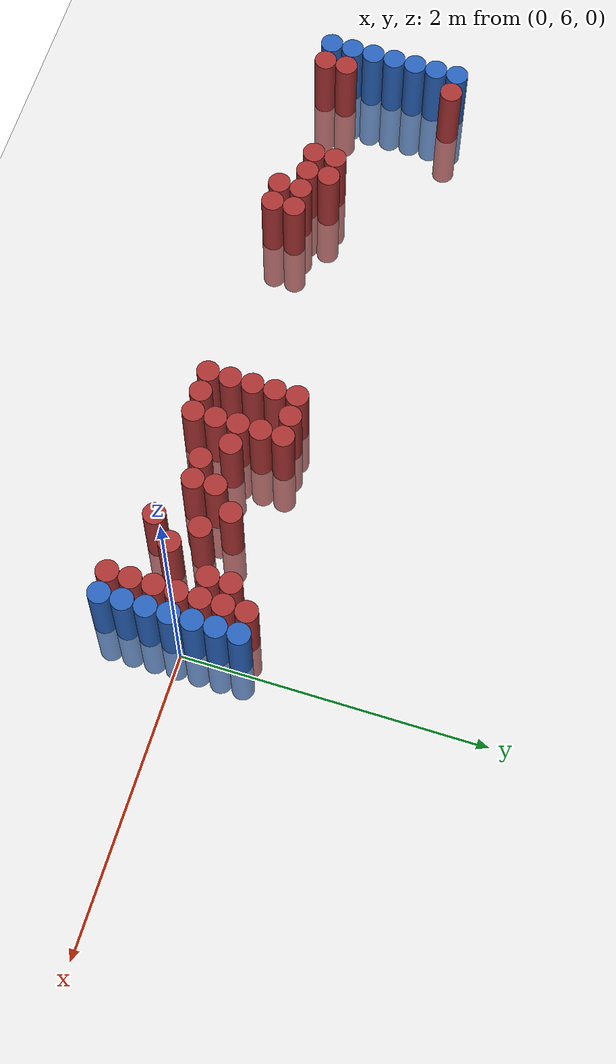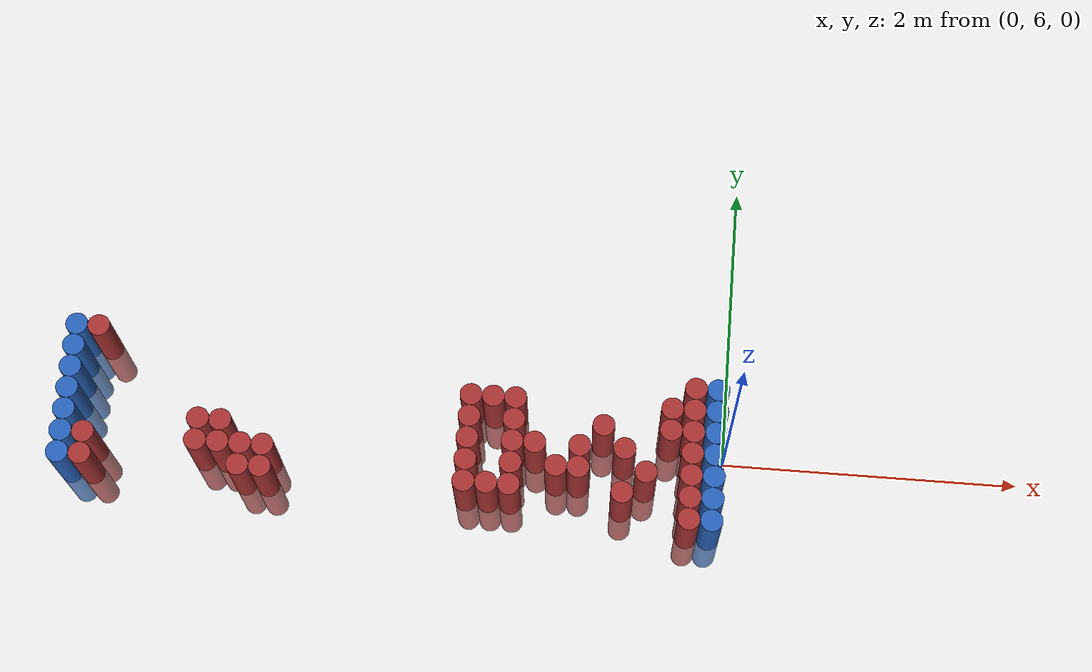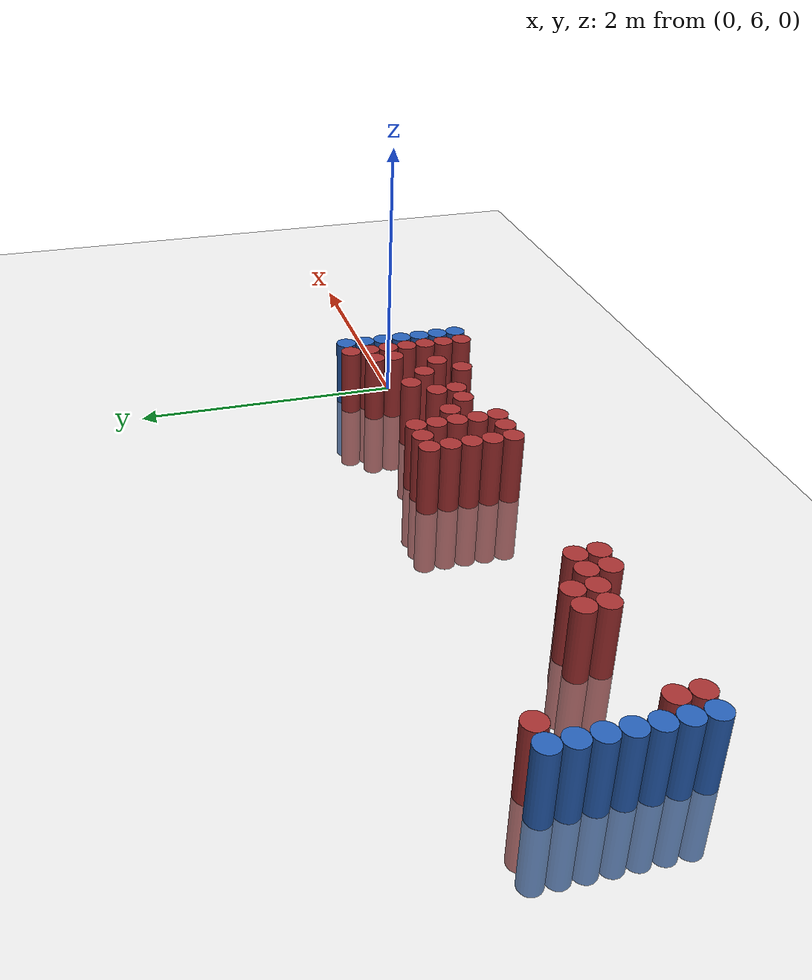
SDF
<sdf version="1.6">
 <world name="default">
  <model name="ground_plane">
   <static>1</static>
   <link name="link">
    <collision name="collision">
     <geometry><plane><normal>0 0 1</normal><size>100 100</size></plane></geometry>
     <surface><friction><ode><mu>100</mu><mu2>50</mu2></ode></friction></surface>
    </collision>
    <visual name="visual">
     <cast_shadows>0</cast_shadows>
     <geometry><plane><normal>0 0 1</normal><size>100 100</size></plane></geometry>
     <material>
      <script><uri>file://media/materials/scripts/gazebo.material</uri><name>Gazebo/Grey</name></script>
     </material>
    </visual>
   </link>
  </model>
  <model name="unit_cylinder_99">
   <static>1</static>
   <pose>-4.425000 5.625000 0.000000 0.000000 0.000000 0.000000</pose>
   <link name="link">
    <inertial>
     <mass>1</mass>
     <inertia><ixx>0.145833</ixx><ixy>0</ixy><ixz>0</ixz><iyy>0.145833</iyy><iyz>0</iyz><izz>0.125</izz></inertia>
    </inertial>
    <collision name="collision">
     <geometry><cylinder><radius>0.075000</radius><length>1</length></cylinder></geometry>
    </collision>
    <visual name="visual">
     <geometry><cylinder><radius>0.075000</radius><length>1</length></cylinder></geometry>
     <material>
      <ambient>0.152000 0.379000 0.720000 1</ambient>
      <diffuse>0.152000 0.379000 0.720000 1</diffuse>
     </material>
     <material>
      <script><name>Gazebo/Grey</name><uri>file://media/materials/scripts/gazebo.material</uri></script>
     </material>
    </visual>
   </link>
  </model>
  <model name="unit_cylinder_100">
   <static>1</static>
   <pose>-4.425000 5.775000 0.000000 0.000000 0.000000 0.000000</pose>
   <link name="link">
    <inertial>
     <mass>1</mass>
     <inertia><ixx>0.145833</ixx><ixy>0</ixy><ixz>0</ixz><iyy>0.145833</iyy><iyz>0</iyz><izz>0.125</izz></inertia>
    </inertial>
    <collision name="collision">
     <geometry><cylinder><radius>0.075000</radius><length>1</length></cylinder></geometry>
    </collision>
    <visual name="visual">
     <geometry><cylinder><radius>0.075000</radius><length>1</length></cylinder></geometry>
     <material>
      <ambient>0.152000 0.379000 0.720000 1</ambient>
      <diffuse>0.152000 0.379000 0.720000 1</diffuse>
     </material>
     <material>
      <script><name>Gazebo/Grey</name><uri>file://media/materials/scripts/gazebo.material</uri></script>
     </material>
    </visual>
   </link>
  </model>
  <model name="unit_cylinder_101">
   <static>1</static>
   <pose>-4.425000 5.925000 0.000000 0.000000 0.000000 0.000000</pose>
   <link name="link">
    <inertial>
     <mass>1</mass>
     <inertia><ixx>0.145833</ixx><ixy>0</ixy><ixz>0</ixz><iyy>0.145833</iyy><iyz>0</iyz><izz>0.125</izz></inertia>
    </inertial>
    <collision name="collision">
     <geometry><cylinder><radius>0.075000</radius><length>1</length></cylinder></geometry>
    </collision>
    <visual name="visual">
     <geometry><cylinder><radius>0.075000</radius><length>1</length></cylinder></geometry>
     <material>
      <ambient>0.152000 0.379000 0.720000 1</ambient>
      <diffuse>0.152000 0.379000 0.720000 1</diffuse>
     </material>
     <material>
      <script><name>Gazebo/Grey</name><uri>file://media/materials/scripts/gazebo.material</uri></script>
     </material>
    </visual>
   </link>
  </model>
  <model name="unit_cylinder_102">
   <static>1</static>
   <pose>-4.425000 6.075000 0.000000 0.000000 0.000000 0.000000</pose>
   <link name="link">
    <inertial>
     <mass>1</mass>
     <inertia><ixx>0.145833</ixx><ixy>0</ixy><ixz>0</ixz><iyy>0.145833</iyy><iyz>0</iyz><izz>0.125</izz></inertia>
    </inertial>
    <collision name="collision">
     <geometry><cylinder><radius>0.075000</radius><length>1</length></cylinder></geometry>
    </collision>
    <visual name="visual">
     <geometry><cylinder><radius>0.075000</radius><length>1</length></cylinder></geometry>
     <material>
      <ambient>0.152000 0.379000 0.720000 1</ambient>
      <diffuse>0.152000 0.379000 0.720000 1</diffuse>
     </material>
     <material>
      <script><name>Gazebo/Grey</name><uri>file://media/materials/scripts/gazebo.material</uri></script>
     </material>
    </visual>
   </link>
  </model>
  <model name="unit_cylinder_103">
   <static>1</static>
   <pose>-4.425000 6.225000 0.000000 0.000000 0.000000 0.000000</pose>
   <link name="link">
    <inertial>
     <mass>1</mass>
     <inertia><ixx>0.145833</ixx><ixy>0</ixy><ixz>0</ixz><iyy>0.145833</iyy><iyz>0</iyz><izz>0.125</izz></inertia>
    </inertial>
    <collision name="collision">
     <geometry><cylinder><radius>0.075000</radius><length>1</length></cylinder></geometry>
    </collision>
    <visual name="visual">
     <geometry><cylinder><radius>0.075000</radius><length>1</length></cylinder></geometry>
     <material>
      <ambient>0.152000 0.379000 0.720000 1</ambient>
      <diffuse>0.152000 0.379000 0.720000 1</diffuse>
     </material>
     <material>
      <script><name>Gazebo/Grey</name><uri>file://media/materials/scripts/gazebo.material</uri></script>
     </material>
    </visual>
   </link>
  </model>
  <model name="unit_cylinder_104">
   <static>1</static>
   <pose>-4.425000 6.375000 0.000000 0.000000 0.000000 0.000000</pose>
   <link name="link">
    <inertial>
     <mass>1</mass>
     <inertia><ixx>0.145833</ixx><ixy>0</ixy><ixz>0</ixz><iyy>0.145833</iyy><iyz>0</iyz><izz>0.125</izz></inertia>
    </inertial>
    <collision name="collision">
     <geometry><cylinder><radius>0.075000</radius><length>1</length></cylinder></geometry>
    </collision>
    <visual name="visual">
     <geometry><cylinder><radius>0.075000</radius><length>1</length></cylinder></geometry>
     <material>
      <ambient>0.152000 0.379000 0.720000 1</ambient>
      <diffuse>0.152000 0.379000 0.720000 1</diffuse>
     </material>
     <material>
      <script><name>Gazebo/Grey</name><uri>file://media/materials/scripts/gazebo.material</uri></script>
     </material>
    </visual>
   </link>
  </model>
  <model name="unit_cylinder_105">
   <static>1</static>
   <pose>-4.425000 6.525000 0.000000 0.000000 0.000000 0.000000</pose>
   <link name="link">
    <inertial>
     <mass>1</mass>
     <inertia><ixx>0.145833</ixx><ixy>0</ixy><ixz>0</ixz><iyy>0.145833</iyy><iyz>0</iyz><izz>0.125</izz></inertia>
    </inertial>
    <collision name="collision">
     <geometry><cylinder><radius>0.075000</radius><length>1</length></cylinder></geometry>
    </collision>
    <visual name="visual">
     <geometry><cylinder><radius>0.075000</radius><length>1</length></cylinder></geometry>
     <material>
      <ambient>0.152000 0.379000 0.720000 1</ambient>
      <diffuse>0.152000 0.379000 0.720000 1</diffuse>
     </material>
     <material>
      <script><name>Gazebo/Grey</name><uri>file://media/materials/scripts/gazebo.material</uri></script>
     </material>
    </visual>
   </link>
  </model>
  <model name="unit_cylinder_126">
   <static>1</static>
   <pose>-4.275000 5.625000 0.000000 0.000000 0.000000 0.000000</pose>
   <link name="link">
    <inertial>
     <mass>1</mass>
     <inertia><ixx>0.145833</ixx><ixy>0</ixy><ixz>0</ixz><iyy>0.145833</iyy><iyz>0</iyz><izz>0.125</izz></inertia>
    </inertial>
    <collision name="collision">
     <geometry><cylinder><radius>0.075000</radius><length>1</length></cylinder></geometry>
    </collision>
    <visual name="visual">
     <geometry><cylinder><radius>0.075000</radius><length>1</length></cylinder></geometry>
     <material>
      <ambient>0.648000 0.192000 0.192000 1</ambient>
      <diffuse>0.648000 0.192000 0.192000 1</diffuse>
     </material>
     <material>
      <script><name>Gazebo/Grey</name><uri>file://media/materials/scripts/gazebo.material</uri></script>
     </material>
    </visual>
   </link>
  </model>
  <model name="unit_cylinder_127">
   <static>1</static>
   <pose>-4.275000 5.775000 0.000000 0.000000 0.000000 0.000000</pose>
   <link name="link">
    <inertial>
     <mass>1</mass>
     <inertia><ixx>0.145833</ixx><ixy>0</ixy><ixz>0</ixz><iyy>0.145833</iyy><iyz>0</iyz><izz>0.125</izz></inertia>
    </inertial>
    <collision name="collision">
     <geometry><cylinder><radius>0.075000</radius><length>1</length></cylinder></geometry>
    </collision>
    <visual name="visual">
     <geometry><cylinder><radius>0.075000</radius><length>1</length></cylinder></geometry>
     <material>
      <ambient>0.648000 0.192000 0.192000 1</ambient>
      <diffuse>0.648000 0.192000 0.192000 1</diffuse>
     </material>
     <material>
      <script><name>Gazebo/Grey</name><uri>file://media/materials/scripts/gazebo.material</uri></script>
     </material>
    </visual>
   </link>
  </model>
  <model name="unit_cylinder_128">
   <static>1</static>
   <pose>-4.275000 6.525000 0.000000 0.000000 0.000000 0.000000</pose>
   <link name="link">
    <inertial>
     <mass>1</mass>
     <inertia><ixx>0.145833</ixx><ixy>0</ixy><ixz>0</ixz><iyy>0.145833</iyy><iyz>0</iyz><izz>0.125</izz></inertia>
    </inertial>
    <collision name="collision">
     <geometry><cylinder><radius>0.075000</radius><length>1</length></cylinder></geometry>
    </collision>
    <visual name="visual">
     <geometry><cylinder><radius>0.075000</radius><length>1</length></cylinder></geometry>
     <material>
      <ambient>0.648000 0.192000 0.192000 1</ambient>
      <diffuse>0.648000 0.192000 0.192000 1</diffuse>
     </material>
     <material>
      <script><name>Gazebo/Grey</name><uri>file://media/materials/scripts/gazebo.material</uri></script>
     </material>
    </visual>
   </link>
  </model>
  <model name="unit_cylinder_157">
   <static>1</static>
   <pose>-3.525000 5.775000 0.000000 0.000000 0.000000 0.000000</pose>
   <link name="link">
    <inertial>
     <mass>1</mass>
     <inertia><ixx>0.145833</ixx><ixy>0</ixy><ixz>0</ixz><iyy>0.145833</iyy><iyz>0</iyz><izz>0.125</izz></inertia>
    </inertial>
    <collision name="collision">
     <geometry><cylinder><radius>0.075000</radius><length>1</length></cylinder></geometry>
    </collision>
    <visual name="visual">
     <geometry><cylinder><radius>0.075000</radius><length>1</length></cylinder></geometry>
     <material>
      <ambient>0.648000 0.192000 0.192000 1</ambient>
      <diffuse>0.648000 0.192000 0.192000 1</diffuse>
     </material>
     <material>
      <script><name>Gazebo/Grey</name><uri>file://media/materials/scripts/gazebo.material</uri></script>
     </material>
    </visual>
   </link>
  </model>
  <model name="unit_cylinder_158">
   <static>1</static>
   <pose>-3.525000 5.925000 0.000000 0.000000 0.000000 0.000000</pose>
   <link name="link">
    <inertial>
     <mass>1</mass>
     <inertia><ixx>0.145833</ixx><ixy>0</ixy><ixz>0</ixz><iyy>0.145833</iyy><iyz>0</iyz><izz>0.125</izz></inertia>
    </inertial>
    <collision name="collision">
     <geometry><cylinder><radius>0.075000</radius><length>1</length></cylinder></geometry>
    </collision>
    <visual name="visual">
     <geometry><cylinder><radius>0.075000</radius><length>1</length></cylinder></geometry>
     <material>
      <ambient>0.648000 0.192000 0.192000 1</ambient>
      <diffuse>0.648000 0.192000 0.192000 1</diffuse>
     </material>
     <material>
      <script><name>Gazebo/Grey</name><uri>file://media/materials/scripts/gazebo.material</uri></script>
     </material>
    </visual>
   </link>
  </model>
  <model name="unit_cylinder_161">
   <static>1</static>
   <pose>-3.375000 5.775000 0.000000 0.000000 0.000000 0.000000</pose>
   <link name="link">
    <inertial>
     <mass>1</mass>
     <inertia><ixx>0.145833</ixx><ixy>0</ixy><ixz>0</ixz><iyy>0.145833</iyy><iyz>0</iyz><izz>0.125</izz></inertia>
    </inertial>
    <collision name="collision">
     <geometry><cylinder><radius>0.075000</radius><length>1</length></cylinder></geometry>
    </collision>
    <visual name="visual">
     <geometry><cylinder><radius>0.075000</radius><length>1</length></cylinder></geometry>
     <material>
      <ambient>0.648000 0.192000 0.192000 1</ambient>
      <diffuse>0.648000 0.192000 0.192000 1</diffuse>
     </material>
     <material>
      <script><name>Gazebo/Grey</name><uri>file://media/materials/scripts/gazebo.material</uri></script>
     </material>
    </visual>
   </link>
  </model>
  <model name="unit_cylinder_162">
   <static>1</static>
   <pose>-3.375000 5.925000 0.000000 0.000000 0.000000 0.000000</pose>
   <link name="link">
    <inertial>
     <mass>1</mass>
     <inertia><ixx>0.145833</ixx><ixy>0</ixy><ixz>0</ixz><iyy>0.145833</iyy><iyz>0</iyz><izz>0.125</izz></inertia>
    </inertial>
    <collision name="collision">
     <geometry><cylinder><radius>0.075000</radius><length>1</length></cylinder></geometry>
    </collision>
    <visual name="visual">
     <geometry><cylinder><radius>0.075000</radius><length>1</length></cylinder></geometry>
     <material>
      <ambient>0.648000 0.192000 0.192000 1</ambient>
      <diffuse>0.648000 0.192000 0.192000 1</diffuse>
     </material>
     <material>
      <script><name>Gazebo/Grey</name><uri>file://media/materials/scripts/gazebo.material</uri></script>
     </material>
    </visual>
   </link>
  </model>
  <model name="unit_cylinder_163">
   <static>1</static>
   <pose>-3.225000 5.625000 0.000000 0.000000 0.000000 0.000000</pose>
   <link name="link">
    <inertial>
     <mass>1</mass>
     <inertia><ixx>0.145833</ixx><ixy>0</ixy><ixz>0</ixz><iyy>0.145833</iyy><iyz>0</iyz><izz>0.125</izz></inertia>
    </inertial>
    <collision name="collision">
     <geometry><cylinder><radius>0.075000</radius><length>1</length></cylinder></geometry>
    </collision>
    <visual name="visual">
     <geometry><cylinder><radius>0.075000</radius><length>1</length></cylinder></geometry>
     <material>
      <ambient>0.648000 0.192000 0.192000 1</ambient>
      <diffuse>0.648000 0.192000 0.192000 1</diffuse>
     </material>
     <material>
      <script><name>Gazebo/Grey</name><uri>file://media/materials/scripts/gazebo.material</uri></script>
     </material>
    </visual>
   </link>
  </model>
  <model name="unit_cylinder_164">
   <static>1</static>
   <pose>-3.225000 5.775000 0.000000 0.000000 0.000000 0.000000</pose>
   <link name="link">
    <inertial>
     <mass>1</mass>
     <inertia><ixx>0.145833</ixx><ixy>0</ixy><ixz>0</ixz><iyy>0.145833</iyy><iyz>0</iyz><izz>0.125</izz></inertia>
    </inertial>
    <collision name="collision">
     <geometry><cylinder><radius>0.075000</radius><length>1</length></cylinder></geometry>
    </collision>
    <visual name="visual">
     <geometry><cylinder><radius>0.075000</radius><length>1</length></cylinder></geometry>
     <material>
      <ambient>0.648000 0.192000 0.192000 1</ambient>
      <diffuse>0.648000 0.192000 0.192000 1</diffuse>
     </material>
     <material>
      <script><name>Gazebo/Grey</name><uri>file://media/materials/scripts/gazebo.material</uri></script>
     </material>
    </visual>
   </link>
  </model>
  <model name="unit_cylinder_166">
   <static>1</static>
   <pose>-3.075000 5.625000 0.000000 0.000000 0.000000 0.000000</pose>
   <link name="link">
    <inertial>
     <mass>1</mass>
     <inertia><ixx>0.145833</ixx><ixy>0</ixy><ixz>0</ixz><iyy>0.145833</iyy><iyz>0</iyz><izz>0.125</izz></inertia>
    </inertial>
    <collision name="collision">
     <geometry><cylinder><radius>0.075000</radius><length>1</length></cylinder></geometry>
    </collision>
    <visual name="visual">
     <geometry><cylinder><radius>0.075000</radius><length>1</length></cylinder></geometry>
     <material>
      <ambient>0.648000 0.192000 0.192000 1</ambient>
      <diffuse>0.648000 0.192000 0.192000 1</diffuse>
     </material>
     <material>
      <script><name>Gazebo/Grey</name><uri>file://media/materials/scripts/gazebo.material</uri></script>
     </material>
    </visual>
   </link>
  </model>
  <model name="unit_cylinder_167">
   <static>1</static>
   <pose>-3.075000 5.775000 0.000000 0.000000 0.000000 0.000000</pose>
   <link name="link">
    <inertial>
     <mass>1</mass>
     <inertia><ixx>0.145833</ixx><ixy>0</ixy><ixz>0</ixz><iyy>0.145833</iyy><iyz>0</iyz><izz>0.125</izz></inertia>
    </inertial>
    <collision name="collision">
     <geometry><cylinder><radius>0.075000</radius><length>1</length></cylinder></geometry>
    </collision>
    <visual name="visual">
     <geometry><cylinder><radius>0.075000</radius><length>1</length></cylinder></geometry>
     <material>
      <ambient>0.648000 0.192000 0.192000 1</ambient>
      <diffuse>0.648000 0.192000 0.192000 1</diffuse>
     </material>
     <material>
      <script><name>Gazebo/Grey</name><uri>file://media/materials/scripts/gazebo.material</uri></script>
     </material>
    </visual>
   </link>
  </model>
  <model name="unit_cylinder_197">
   <static>1</static>
   <pose>-1.725000 5.625000 0.000000 0.000000 0.000000 0.000000</pose>
   <link name="link">
    <inertial>
     <mass>1</mass>
     <inertia><ixx>0.145833</ixx><ixy>0</ixy><ixz>0</ixz><iyy>0.145833</iyy><iyz>0</iyz><izz>0.125</izz></inertia>
    </inertial>
    <collision name="collision">
     <geometry><cylinder><radius>0.075000</radius><length>1</length></cylinder></geometry>
    </collision>
    <visual name="visual">
     <geometry><cylinder><radius>0.075000</radius><length>1</length></cylinder></geometry>
     <material>
      <ambient>0.648000 0.192000 0.192000 1</ambient>
      <diffuse>0.648000 0.192000 0.192000 1</diffuse>
     </material>
     <material>
      <script><name>Gazebo/Grey</name><uri>file://media/materials/scripts/gazebo.material</uri></script>
     </material>
    </visual>
   </link>
  </model>
  <model name="unit_cylinder_198">
   <static>1</static>
   <pose>-1.725000 5.775000 0.000000 0.000000 0.000000 0.000000</pose>
   <link name="link">
    <inertial>
     <mass>1</mass>
     <inertia><ixx>0.145833</ixx><ixy>0</ixy><ixz>0</ixz><iyy>0.145833</iyy><iyz>0</iyz><izz>0.125</izz></inertia>
    </inertial>
    <collision name="collision">
     <geometry><cylinder><radius>0.075000</radius><length>1</length></cylinder></geometry>
    </collision>
    <visual name="visual">
     <geometry><cylinder><radius>0.075000</radius><length>1</length></cylinder></geometry>
     <material>
      <ambient>0.648000 0.192000 0.192000 1</ambient>
      <diffuse>0.648000 0.192000 0.192000 1</diffuse>
     </material>
     <material>
      <script><name>Gazebo/Grey</name><uri>file://media/materials/scripts/gazebo.material</uri></script>
     </material>
    </visual>
   </link>
  </model>
  <model name="unit_cylinder_199">
   <static>1</static>
   <pose>-1.725000 5.925000 0.000000 0.000000 0.000000 0.000000</pose>
   <link name="link">
    <inertial>
     <mass>1</mass>
     <inertia><ixx>0.145833</ixx><ixy>0</ixy><ixz>0</ixz><iyy>0.145833</iyy><iyz>0</iyz><izz>0.125</izz></inertia>
    </inertial>
    <collision name="collision">
     <geometry><cylinder><radius>0.075000</radius><length>1</length></cylinder></geometry>
    </collision>
    <visual name="visual">
     <geometry><cylinder><radius>0.075000</radius><length>1</length></cylinder></geometry>
     <material>
      <ambient>0.648000 0.192000 0.192000 1</ambient>
      <diffuse>0.648000 0.192000 0.192000 1</diffuse>
     </material>
     <material>
      <script><name>Gazebo/Grey</name><uri>file://media/materials/scripts/gazebo.material</uri></script>
     </material>
    </visual>
   </link>
  </model>
  <model name="unit_cylinder_200">
   <static>1</static>
   <pose>-1.725000 6.075000 0.000000 0.000000 0.000000 0.000000</pose>
   <link name="link">
    <inertial>
     <mass>1</mass>
     <inertia><ixx>0.145833</ixx><ixy>0</ixy><ixz>0</ixz><iyy>0.145833</iyy><iyz>0</iyz><izz>0.125</izz></inertia>
    </inertial>
    <collision name="collision">
     <geometry><cylinder><radius>0.075000</radius><length>1</length></cylinder></geometry>
    </collision>
    <visual name="visual">
     <geometry><cylinder><radius>0.075000</radius><length>1</length></cylinder></geometry>
     <material>
      <ambient>0.648000 0.192000 0.192000 1</ambient>
      <diffuse>0.648000 0.192000 0.192000 1</diffuse>
     </material>
     <material>
      <script><name>Gazebo/Grey</name><uri>file://media/materials/scripts/gazebo.material</uri></script>
     </material>
    </visual>
   </link>
  </model>
  <model name="unit_cylinder_201">
   <static>1</static>
   <pose>-1.725000 6.225000 0.000000 0.000000 0.000000 0.000000</pose>
   <link name="link">
    <inertial>
     <mass>1</mass>
     <inertia><ixx>0.145833</ixx><ixy>0</ixy><ixz>0</ixz><iyy>0.145833</iyy><iyz>0</iyz><izz>0.125</izz></inertia>
    </inertial>
    <collision name="collision">
     <geometry><cylinder><radius>0.075000</radius><length>1</length></cylinder></geometry>
    </collision>
    <visual name="visual">
     <geometry><cylinder><radius>0.075000</radius><length>1</length></cylinder></geometry>
     <material>
      <ambient>0.648000 0.192000 0.192000 1</ambient>
      <diffuse>0.648000 0.192000 0.192000 1</diffuse>
     </material>
     <material>
      <script><name>Gazebo/Grey</name><uri>file://media/materials/scripts/gazebo.material</uri></script>
     </material>
    </visual>
   </link>
  </model>
  <model name="unit_cylinder_203">
   <static>1</static>
   <pose>-1.575000 5.625000 0.000000 0.000000 0.000000 0.000000</pose>
   <link name="link">
    <inertial>
     <mass>1</mass>
     <inertia><ixx>0.145833</ixx><ixy>0</ixy><ixz>0</ixz><iyy>0.145833</iyy><iyz>0</iyz><izz>0.125</izz></inertia>
    </inertial>
    <collision name="collision">
     <geometry><cylinder><radius>0.075000</radius><length>1</length></cylinder></geometry>
    </collision>
    <visual name="visual">
     <geometry><cylinder><radius>0.075000</radius><length>1</length></cylinder></geometry>
     <material>
      <ambient>0.648000 0.192000 0.192000 1</ambient>
      <diffuse>0.648000 0.192000 0.192000 1</diffuse>
     </material>
     <material>
      <script><name>Gazebo/Grey</name><uri>file://media/materials/scripts/gazebo.material</uri></script>
     </material>
    </visual>
   </link>
  </model>
  <model name="unit_cylinder_204">
   <static>1</static>
   <pose>-1.575000 6.225000 0.000000 0.000000 0.000000 0.000000</pose>
   <link name="link">
    <inertial>
     <mass>1</mass>
     <inertia><ixx>0.145833</ixx><ixy>0</ixy><ixz>0</ixz><iyy>0.145833</iyy><iyz>0</iyz><izz>0.125</izz></inertia>
    </inertial>
    <collision name="collision">
     <geometry><cylinder><radius>0.075000</radius><length>1</length></cylinder></geometry>
    </collision>
    <visual name="visual">
     <geometry><cylinder><radius>0.075000</radius><length>1</length></cylinder></geometry>
     <material>
      <ambient>0.648000 0.192000 0.192000 1</ambient>
      <diffuse>0.648000 0.192000 0.192000 1</diffuse>
     </material>
     <material>
      <script><name>Gazebo/Grey</name><uri>file://media/materials/scripts/gazebo.material</uri></script>
     </material>
    </visual>
   </link>
  </model>
  <model name="unit_cylinder_207">
   <static>1</static>
   <pose>-1.425000 5.625000 0.000000 0.000000 0.000000 0.000000</pose>
   <link name="link">
    <inertial>
     <mass>1</mass>
     <inertia><ixx>0.145833</ixx><ixy>0</ixy><ixz>0</ixz><iyy>0.145833</iyy><iyz>0</iyz><izz>0.125</izz></inertia>
    </inertial>
    <collision name="collision">
     <geometry><cylinder><radius>0.075000</radius><length>1</length></cylinder></geometry>
    </collision>
    <visual name="visual">
     <geometry><cylinder><radius>0.075000</radius><length>1</length></cylinder></geometry>
     <material>
      <ambient>0.648000 0.192000 0.192000 1</ambient>
      <diffuse>0.648000 0.192000 0.192000 1</diffuse>
     </material>
     <material>
      <script><name>Gazebo/Grey</name><uri>file://media/materials/scripts/gazebo.material</uri></script>
     </material>
    </visual>
   </link>
  </model>
  <model name="unit_cylinder_208">
   <static>1</static>
   <pose>-1.425000 5.775000 0.000000 0.000000 0.000000 0.000000</pose>
   <link name="link">
    <inertial>
     <mass>1</mass>
     <inertia><ixx>0.145833</ixx><ixy>0</ixy><ixz>0</ixz><iyy>0.145833</iyy><iyz>0</iyz><izz>0.125</izz></inertia>
    </inertial>
    <collision name="collision">
     <geometry><cylinder><radius>0.075000</radius><length>1</length></cylinder></geometry>
    </collision>
    <visual name="visual">
     <geometry><cylinder><radius>0.075000</radius><length>1</length></cylinder></geometry>
     <material>
      <ambient>0.648000 0.192000 0.192000 1</ambient>
      <diffuse>0.648000 0.192000 0.192000 1</diffuse>
     </material>
     <material>
      <script><name>Gazebo/Grey</name><uri>file://media/materials/scripts/gazebo.material</uri></script>
     </material>
    </visual>
   </link>
  </model>
  <model name="unit_cylinder_209">
   <static>1</static>
   <pose>-1.425000 5.925000 0.000000 0.000000 0.000000 0.000000</pose>
   <link name="link">
    <inertial>
     <mass>1</mass>
     <inertia><ixx>0.145833</ixx><ixy>0</ixy><ixz>0</ixz><iyy>0.145833</iyy><iyz>0</iyz><izz>0.125</izz></inertia>
    </inertial>
    <collision name="collision">
     <geometry><cylinder><radius>0.075000</radius><length>1</length></cylinder></geometry>
    </collision>
    <visual name="visual">
     <geometry><cylinder><radius>0.075000</radius><length>1</length></cylinder></geometry>
     <material>
      <ambient>0.648000 0.192000 0.192000 1</ambient>
      <diffuse>0.648000 0.192000 0.192000 1</diffuse>
     </material>
     <material>
      <script><name>Gazebo/Grey</name><uri>file://media/materials/scripts/gazebo.material</uri></script>
     </material>
    </visual>
   </link>
  </model>
  <model name="unit_cylinder_210">
   <static>1</static>
   <pose>-1.425000 6.075000 0.000000 0.000000 0.000000 0.000000</pose>
   <link name="link">
    <inertial>
     <mass>1</mass>
     <inertia><ixx>0.145833</ixx><ixy>0</ixy><ixz>0</ixz><iyy>0.145833</iyy><iyz>0</iyz><izz>0.125</izz></inertia>
    </inertial>
    <collision name="collision">
     <geometry><cylinder><radius>0.075000</radius><length>1</length></cylinder></geometry>
    </collision>
    <visual name="visual">
     <geometry><cylinder><radius>0.075000</radius><length>1</length></cylinder></geometry>
     <material>
      <ambient>0.648000 0.192000 0.192000 1</ambient>
      <diffuse>0.648000 0.192000 0.192000 1</diffuse>
     </material>
     <material>
      <script><name>Gazebo/Grey</name><uri>file://media/materials/scripts/gazebo.material</uri></script>
     </material>
    </visual>
   </link>
  </model>
  <model name="unit_cylinder_211">
   <static>1</static>
   <pose>-1.425000 6.225000 0.000000 0.000000 0.000000 0.000000</pose>
   <link name="link">
    <inertial>
     <mass>1</mass>
     <inertia><ixx>0.145833</ixx><ixy>0</ixy><ixz>0</ixz><iyy>0.145833</iyy><iyz>0</iyz><izz>0.125</izz></inertia>
    </inertial>
    <collision name="collision">
     <geometry><cylinder><radius>0.075000</radius><length>1</length></cylinder></geometry>
    </collision>
    <visual name="visual">
     <geometry><cylinder><radius>0.075000</radius><length>1</length></cylinder></geometry>
     <material>
      <ambient>0.648000 0.192000 0.192000 1</ambient>
      <diffuse>0.648000 0.192000 0.192000 1</diffuse>
     </material>
     <material>
      <script><name>Gazebo/Grey</name><uri>file://media/materials/scripts/gazebo.material</uri></script>
     </material>
    </visual>
   </link>
  </model>
  <model name="unit_cylinder_216">
   <static>1</static>
   <pose>-1.275000 5.925000 0.000000 0.000000 0.000000 0.000000</pose>
   <link name="link">
    <inertial>
     <mass>1</mass>
     <inertia><ixx>0.145833</ixx><ixy>0</ixy><ixz>0</ixz><iyy>0.145833</iyy><iyz>0</iyz><izz>0.125</izz></inertia>
    </inertial>
    <collision name="collision">
     <geometry><cylinder><radius>0.075000</radius><length>1</length></cylinder></geometry>
    </collision>
    <visual name="visual">
     <geometry><cylinder><radius>0.075000</radius><length>1</length></cylinder></geometry>
     <material>
      <ambient>0.648000 0.192000 0.192000 1</ambient>
      <diffuse>0.648000 0.192000 0.192000 1</diffuse>
     </material>
     <material>
      <script><name>Gazebo/Grey</name><uri>file://media/materials/scripts/gazebo.material</uri></script>
     </material>
    </visual>
   </link>
  </model>
  <model name="unit_cylinder_225">
   <static>1</static>
   <pose>-1.125000 5.775000 0.000000 0.000000 0.000000 0.000000</pose>
   <link name="link">
    <inertial>
     <mass>1</mass>
     <inertia><ixx>0.145833</ixx><ixy>0</ixy><ixz>0</ixz><iyy>0.145833</iyy><iyz>0</iyz><izz>0.125</izz></inertia>
    </inertial>
    <collision name="collision">
     <geometry><cylinder><radius>0.075000</radius><length>1</length></cylinder></geometry>
    </collision>
    <visual name="visual">
     <geometry><cylinder><radius>0.075000</radius><length>1</length></cylinder></geometry>
     <material>
      <ambient>0.648000 0.192000 0.192000 1</ambient>
      <diffuse>0.648000 0.192000 0.192000 1</diffuse>
     </material>
     <material>
      <script><name>Gazebo/Grey</name><uri>file://media/materials/scripts/gazebo.material</uri></script>
     </material>
    </visual>
   </link>
  </model>
  <model name="unit_cylinder_231">
   <static>1</static>
   <pose>-0.975000 5.775000 0.000000 0.000000 0.000000 0.000000</pose>
   <link name="link">
    <inertial>
     <mass>1</mass>
     <inertia><ixx>0.145833</ixx><ixy>0</ixy><ixz>0</ixz><iyy>0.145833</iyy><iyz>0</iyz><izz>0.125</izz></inertia>
    </inertial>
    <collision name="collision">
     <geometry><cylinder><radius>0.075000</radius><length>1</length></cylinder></geometry>
    </collision>
    <visual name="visual">
     <geometry><cylinder><radius>0.075000</radius><length>1</length></cylinder></geometry>
     <material>
      <ambient>0.648000 0.192000 0.192000 1</ambient>
      <diffuse>0.648000 0.192000 0.192000 1</diffuse>
     </material>
     <material>
      <script><name>Gazebo/Grey</name><uri>file://media/materials/scripts/gazebo.material</uri></script>
     </material>
    </visual>
   </link>
  </model>
  <model name="unit_cylinder_232">
   <static>1</static>
   <pose>-0.975000 5.925000 0.000000 0.000000 0.000000 0.000000</pose>
   <link name="link">
    <inertial>
     <mass>1</mass>
     <inertia><ixx>0.145833</ixx><ixy>0</ixy><ixz>0</ixz><iyy>0.145833</iyy><iyz>0</iyz><izz>0.125</izz></inertia>
    </inertial>
    <collision name="collision">
     <geometry><cylinder><radius>0.075000</radius><length>1</length></cylinder></geometry>
    </collision>
    <visual name="visual">
     <geometry><cylinder><radius>0.075000</radius><length>1</length></cylinder></geometry>
     <material>
      <ambient>0.648000 0.192000 0.192000 1</ambient>
      <diffuse>0.648000 0.192000 0.192000 1</diffuse>
     </material>
     <material>
      <script><name>Gazebo/Grey</name><uri>file://media/materials/scripts/gazebo.material</uri></script>
     </material>
    </visual>
   </link>
  </model>
  <model name="unit_cylinder_239">
   <static>1</static>
   <pose>-0.825000 6.075000 0.000000 0.000000 0.000000 0.000000</pose>
   <link name="link">
    <inertial>
     <mass>1</mass>
     <inertia><ixx>0.145833</ixx><ixy>0</ixy><ixz>0</ixz><iyy>0.145833</iyy><iyz>0</iyz><izz>0.125</izz></inertia>
    </inertial>
    <collision name="collision">
     <geometry><cylinder><radius>0.075000</radius><length>1</length></cylinder></geometry>
    </collision>
    <visual name="visual">
     <geometry><cylinder><radius>0.075000</radius><length>1</length></cylinder></geometry>
     <material>
      <ambient>0.648000 0.192000 0.192000 1</ambient>
      <diffuse>0.648000 0.192000 0.192000 1</diffuse>
     </material>
     <material>
      <script><name>Gazebo/Grey</name><uri>file://media/materials/scripts/gazebo.material</uri></script>
     </material>
    </visual>
   </link>
  </model>
  <model name="unit_cylinder_246">
   <static>1</static>
   <pose>-0.675000 5.625000 0.000000 0.000000 0.000000 0.000000</pose>
   <link name="link">
    <inertial>
     <mass>1</mass>
     <inertia><ixx>0.145833</ixx><ixy>0</ixy><ixz>0</ixz><iyy>0.145833</iyy><iyz>0</iyz><izz>0.125</izz></inertia>
    </inertial>
    <collision name="collision">
     <geometry><cylinder><radius>0.075000</radius><length>1</length></cylinder></geometry>
    </collision>
    <visual name="visual">
     <geometry><cylinder><radius>0.075000</radius><length>1</length></cylinder></geometry>
     <material>
      <ambient>0.648000 0.192000 0.192000 1</ambient>
      <diffuse>0.648000 0.192000 0.192000 1</diffuse>
     </material>
     <material>
      <script><name>Gazebo/Grey</name><uri>file://media/materials/scripts/gazebo.material</uri></script>
     </material>
    </visual>
   </link>
  </model>
  <model name="unit_cylinder_247">
   <static>1</static>
   <pose>-0.675000 5.925000 0.000000 0.000000 0.000000 0.000000</pose>
   <link name="link">
    <inertial>
     <mass>1</mass>
     <inertia><ixx>0.145833</ixx><ixy>0</ixy><ixz>0</ixz><iyy>0.145833</iyy><iyz>0</iyz><izz>0.125</izz></inertia>
    </inertial>
    <collision name="collision">
     <geometry><cylinder><radius>0.075000</radius><length>1</length></cylinder></geometry>
    </collision>
    <visual name="visual">
     <geometry><cylinder><radius>0.075000</radius><length>1</length></cylinder></geometry>
     <material>
      <ambient>0.648000 0.192000 0.192000 1</ambient>
      <diffuse>0.648000 0.192000 0.192000 1</diffuse>
     </material>
     <material>
      <script><name>Gazebo/Grey</name><uri>file://media/materials/scripts/gazebo.material</uri></script>
     </material>
    </visual>
   </link>
  </model>
  <model name="unit_cylinder_258">
   <static>1</static>
   <pose>-0.525000 5.775000 0.000000 0.000000 0.000000 0.000000</pose>
   <link name="link">
    <inertial>
     <mass>1</mass>
     <inertia><ixx>0.145833</ixx><ixy>0</ixy><ixz>0</ixz><iyy>0.145833</iyy><iyz>0</iyz><izz>0.125</izz></inertia>
    </inertial>
    <collision name="collision">
     <geometry><cylinder><radius>0.075000</radius><length>1</length></cylinder></geometry>
    </collision>
    <visual name="visual">
     <geometry><cylinder><radius>0.075000</radius><length>1</length></cylinder></geometry>
     <material>
      <ambient>0.648000 0.192000 0.192000 1</ambient>
      <diffuse>0.648000 0.192000 0.192000 1</diffuse>
     </material>
     <material>
      <script><name>Gazebo/Grey</name><uri>file://media/materials/scripts/gazebo.material</uri></script>
     </material>
    </visual>
   </link>
  </model>
  <model name="unit_cylinder_267">
   <static>1</static>
   <pose>-0.375000 6.075000 0.000000 0.000000 0.000000 0.000000</pose>
   <link name="link">
    <inertial>
     <mass>1</mass>
     <inertia><ixx>0.145833</ixx><ixy>0</ixy><ixz>0</ixz><iyy>0.145833</iyy><iyz>0</iyz><izz>0.125</izz></inertia>
    </inertial>
    <collision name="collision">
     <geometry><cylinder><radius>0.075000</radius><length>1</length></cylinder></geometry>
    </collision>
    <visual name="visual">
     <geometry><cylinder><radius>0.075000</radius><length>1</length></cylinder></geometry>
     <material>
      <ambient>0.648000 0.192000 0.192000 1</ambient>
      <diffuse>0.648000 0.192000 0.192000 1</diffuse>
     </material>
     <material>
      <script><name>Gazebo/Grey</name><uri>file://media/materials/scripts/gazebo.material</uri></script>
     </material>
    </visual>
   </link>
  </model>
  <model name="unit_cylinder_268">
   <static>1</static>
   <pose>-0.375000 6.225000 0.000000 0.000000 0.000000 0.000000</pose>
   <link name="link">
    <inertial>
     <mass>1</mass>
     <inertia><ixx>0.145833</ixx><ixy>0</ixy><ixz>0</ixz><iyy>0.145833</iyy><iyz>0</iyz><izz>0.125</izz></inertia>
    </inertial>
    <collision name="collision">
     <geometry><cylinder><radius>0.075000</radius><length>1</length></cylinder></geometry>
    </collision>
    <visual name="visual">
     <geometry><cylinder><radius>0.075000</radius><length>1</length></cylinder></geometry>
     <material>
      <ambient>0.648000 0.192000 0.192000 1</ambient>
      <diffuse>0.648000 0.192000 0.192000 1</diffuse>
     </material>
     <material>
      <script><name>Gazebo/Grey</name><uri>file://media/materials/scripts/gazebo.material</uri></script>
     </material>
    </visual>
   </link>
  </model>
  <model name="unit_cylinder_278">
   <static>1</static>
   <pose>-0.225000 5.475000 0.000000 0.000000 0.000000 0.000000</pose>
   <link name="link">
    <inertial>
     <mass>1</mass>
     <inertia><ixx>0.145833</ixx><ixy>0</ixy><ixz>0</ixz><iyy>0.145833</iyy><iyz>0</iyz><izz>0.125</izz></inertia>
    </inertial>
    <collision name="collision">
     <geometry><cylinder><radius>0.075000</radius><length>1</length></cylinder></geometry>
    </collision>
    <visual name="visual">
     <geometry><cylinder><radius>0.075000</radius><length>1</length></cylinder></geometry>
     <material>
      <ambient>0.648000 0.192000 0.192000 1</ambient>
      <diffuse>0.648000 0.192000 0.192000 1</diffuse>
     </material>
     <material>
      <script><name>Gazebo/Grey</name><uri>file://media/materials/scripts/gazebo.material</uri></script>
     </material>
    </visual>
   </link>
  </model>
  <model name="unit_cylinder_279">
   <static>1</static>
   <pose>-0.225000 5.625000 0.000000 0.000000 0.000000 0.000000</pose>
   <link name="link">
    <inertial>
     <mass>1</mass>
     <inertia><ixx>0.145833</ixx><ixy>0</ixy><ixz>0</ixz><iyy>0.145833</iyy><iyz>0</iyz><izz>0.125</izz></inertia>
    </inertial>
    <collision name="collision">
     <geometry><cylinder><radius>0.075000</radius><length>1</length></cylinder></geometry>
    </collision>
    <visual name="visual">
     <geometry><cylinder><radius>0.075000</radius><length>1</length></cylinder></geometry>
     <material>
      <ambient>0.648000 0.192000 0.192000 1</ambient>
      <diffuse>0.648000 0.192000 0.192000 1</diffuse>
     </material>
     <material>
      <script><name>Gazebo/Grey</name><uri>file://media/materials/scripts/gazebo.material</uri></script>
     </material>
    </visual>
   </link>
  </model>
  <model name="unit_cylinder_280">
   <static>1</static>
   <pose>-0.225000 5.775000 0.000000 0.000000 0.000000 0.000000</pose>
   <link name="link">
    <inertial>
     <mass>1</mass>
     <inertia><ixx>0.145833</ixx><ixy>0</ixy><ixz>0</ixz><iyy>0.145833</iyy><iyz>0</iyz><izz>0.125</izz></inertia>
    </inertial>
    <collision name="collision">
     <geometry><cylinder><radius>0.075000</radius><length>1</length></cylinder></geometry>
    </collision>
    <visual name="visual">
     <geometry><cylinder><radius>0.075000</radius><length>1</length></cylinder></geometry>
     <material>
      <ambient>0.648000 0.192000 0.192000 1</ambient>
      <diffuse>0.648000 0.192000 0.192000 1</diffuse>
     </material>
     <material>
      <script><name>Gazebo/Grey</name><uri>file://media/materials/scripts/gazebo.material</uri></script>
     </material>
    </visual>
   </link>
  </model>
  <model name="unit_cylinder_281">
   <static>1</static>
   <pose>-0.225000 5.925000 0.000000 0.000000 0.000000 0.000000</pose>
   <link name="link">
    <inertial>
     <mass>1</mass>
     <inertia><ixx>0.145833</ixx><ixy>0</ixy><ixz>0</ixz><iyy>0.145833</iyy><iyz>0</iyz><izz>0.125</izz></inertia>
    </inertial>
    <collision name="collision">
     <geometry><cylinder><radius>0.075000</radius><length>1</length></cylinder></geometry>
    </collision>
    <visual name="visual">
     <geometry><cylinder><radius>0.075000</radius><length>1</length></cylinder></geometry>
     <material>
      <ambient>0.648000 0.192000 0.192000 1</ambient>
      <diffuse>0.648000 0.192000 0.192000 1</diffuse>
     </material>
     <material>
      <script><name>Gazebo/Grey</name><uri>file://media/materials/scripts/gazebo.material</uri></script>
     </material>
    </visual>
   </link>
  </model>
  <model name="unit_cylinder_282">
   <static>1</static>
   <pose>-0.225000 6.075000 0.000000 0.000000 0.000000 0.000000</pose>
   <link name="link">
    <inertial>
     <mass>1</mass>
     <inertia><ixx>0.145833</ixx><ixy>0</ixy><ixz>0</ixz><iyy>0.145833</iyy><iyz>0</iyz><izz>0.125</izz></inertia>
    </inertial>
    <collision name="collision">
     <geometry><cylinder><radius>0.075000</radius><length>1</length></cylinder></geometry>
    </collision>
    <visual name="visual">
     <geometry><cylinder><radius>0.075000</radius><length>1</length></cylinder></geometry>
     <material>
      <ambient>0.648000 0.192000 0.192000 1</ambient>
      <diffuse>0.648000 0.192000 0.192000 1</diffuse>
     </material>
     <material>
      <script><name>Gazebo/Grey</name><uri>file://media/materials/scripts/gazebo.material</uri></script>
     </material>
    </visual>
   </link>
  </model>
  <model name="unit_cylinder_283">
   <static>1</static>
   <pose>-0.225000 6.225000 0.000000 0.000000 0.000000 0.000000</pose>
   <link name="link">
    <inertial>
     <mass>1</mass>
     <inertia><ixx>0.145833</ixx><ixy>0</ixy><ixz>0</ixz><iyy>0.145833</iyy><iyz>0</iyz><izz>0.125</izz></inertia>
    </inertial>
    <collision name="collision">
     <geometry><cylinder><radius>0.075000</radius><length>1</length></cylinder></geometry>
    </collision>
    <visual name="visual">
     <geometry><cylinder><radius>0.075000</radius><length>1</length></cylinder></geometry>
     <material>
      <ambient>0.648000 0.192000 0.192000 1</ambient>
      <diffuse>0.648000 0.192000 0.192000 1</diffuse>
     </material>
     <material>
      <script><name>Gazebo/Grey</name><uri>file://media/materials/scripts/gazebo.material</uri></script>
     </material>
    </visual>
   </link>
  </model>
  <model name="unit_cylinder_284">
   <static>1</static>
   <pose>-0.225000 6.375000 0.000000 0.000000 0.000000 0.000000</pose>
   <link name="link">
    <inertial>
     <mass>1</mass>
     <inertia><ixx>0.145833</ixx><ixy>0</ixy><ixz>0</ixz><iyy>0.145833</iyy><iyz>0</iyz><izz>0.125</izz></inertia>
    </inertial>
    <collision name="collision">
     <geometry><cylinder><radius>0.075000</radius><length>1</length></cylinder></geometry>
    </collision>
    <visual name="visual">
     <geometry><cylinder><radius>0.075000</radius><length>1</length></cylinder></geometry>
     <material>
      <ambient>0.648000 0.192000 0.192000 1</ambient>
      <diffuse>0.648000 0.192000 0.192000 1</diffuse>
     </material>
     <material>
      <script><name>Gazebo/Grey</name><uri>file://media/materials/scripts/gazebo.material</uri></script>
     </material>
    </visual>
   </link>
  </model>
  <model name="unit_cylinder_299">
   <static>1</static>
   <pose>-0.075000 5.475000 0.000000 0.000000 0.000000 0.000000</pose>
   <link name="link">
    <inertial>
     <mass>1</mass>
     <inertia><ixx>0.145833</ixx><ixy>0</ixy><ixz>0</ixz><iyy>0.145833</iyy><iyz>0</iyz><izz>0.125</izz></inertia>
    </inertial>
    <collision name="collision">
     <geometry><cylinder><radius>0.075000</radius><length>1</length></cylinder></geometry>
    </collision>
    <visual name="visual">
     <geometry><cylinder><radius>0.075000</radius><length>1</length></cylinder></geometry>
     <material>
      <ambient>0.152000 0.379000 0.720000 1</ambient>
      <diffuse>0.152000 0.379000 0.720000 1</diffuse>
     </material>
     <material>
      <script><name>Gazebo/Grey</name><uri>file://media/materials/scripts/gazebo.material</uri></script>
     </material>
    </visual>
   </link>
  </model>
  <model name="unit_cylinder_300">
   <static>1</static>
   <pose>-0.075000 5.625000 0.000000 0.000000 0.000000 0.000000</pose>
   <link name="link">
    <inertial>
     <mass>1</mass>
     <inertia><ixx>0.145833</ixx><ixy>0</ixy><ixz>0</ixz><iyy>0.145833</iyy><iyz>0</iyz><izz>0.125</izz></inertia>
    </inertial>
    <collision name="collision">
     <geometry><cylinder><radius>0.075000</radius><length>1</length></cylinder></geometry>
    </collision>
    <visual name="visual">
     <geometry><cylinder><radius>0.075000</radius><length>1</length></cylinder></geometry>
     <material>
      <ambient>0.152000 0.379000 0.720000 1</ambient>
      <diffuse>0.152000 0.379000 0.720000 1</diffuse>
     </material>
     <material>
      <script><name>Gazebo/Grey</name><uri>file://media/materials/scripts/gazebo.material</uri></script>
     </material>
    </visual>
   </link>
  </model>
  <model name="unit_cylinder_301">
   <static>1</static>
   <pose>-0.075000 5.775000 0.000000 0.000000 0.000000 0.000000</pose>
   <link name="link">
    <inertial>
     <mass>1</mass>
     <inertia><ixx>0.145833</ixx><ixy>0</ixy><ixz>0</ixz><iyy>0.145833</iyy><iyz>0</iyz><izz>0.125</izz></inertia>
    </inertial>
    <collision name="collision">
     <geometry><cylinder><radius>0.075000</radius><length>1</length></cylinder></geometry>
    </collision>
    <visual name="visual">
     <geometry><cylinder><radius>0.075000</radius><length>1</length></cylinder></geometry>
     <material>
      <ambient>0.152000 0.379000 0.720000 1</ambient>
      <diffuse>0.152000 0.379000 0.720000 1</diffuse>
     </material>
     <material>
      <script><name>Gazebo/Grey</name><uri>file://media/materials/scripts/gazebo.material</uri></script>
     </material>
    </visual>
   </link>
  </model>
  <model name="unit_cylinder_302">
   <static>1</static>
   <pose>-0.075000 5.925000 0.000000 0.000000 0.000000 0.000000</pose>
   <link name="link">
    <inertial>
     <mass>1</mass>
     <inertia><ixx>0.145833</ixx><ixy>0</ixy><ixz>0</ixz><iyy>0.145833</iyy><iyz>0</iyz><izz>0.125</izz></inertia>
    </inertial>
    <collision name="collision">
     <geometry><cylinder><radius>0.075000</radius><length>1</length></cylinder></geometry>
    </collision>
    <visual name="visual">
     <geometry><cylinder><radius>0.075000</radius><length>1</length></cylinder></geometry>
     <material>
      <ambient>0.152000 0.379000 0.720000 1</ambient>
      <diffuse>0.152000 0.379000 0.720000 1</diffuse>
     </material>
     <material>
      <script><name>Gazebo/Grey</name><uri>file://media/materials/scripts/gazebo.material</uri></script>
     </material>
    </visual>
   </link>
  </model>
  <model name="unit_cylinder_303">
   <static>1</static>
   <pose>-0.075000 6.075000 0.000000 0.000000 0.000000 0.000000</pose>
   <link name="link">
    <inertial>
     <mass>1</mass>
     <inertia><ixx>0.145833</ixx><ixy>0</ixy><ixz>0</ixz><iyy>0.145833</iyy><iyz>0</iyz><izz>0.125</izz></inertia>
    </inertial>
    <collision name="collision">
     <geometry><cylinder><radius>0.075000</radius><length>1</length></cylinder></geometry>
    </collision>
    <visual name="visual">
     <geometry><cylinder><radius>0.075000</radius><length>1</length></cylinder></geometry>
     <material>
      <ambient>0.152000 0.379000 0.720000 1</ambient>
      <diffuse>0.152000 0.379000 0.720000 1</diffuse>
     </material>
     <material>
      <script><name>Gazebo/Grey</name><uri>file://media/materials/scripts/gazebo.material</uri></script>
     </material>
    </visual>
   </link>
  </model>
  <model name="unit_cylinder_304">
   <static>1</static>
   <pose>-0.075000 6.225000 0.000000 0.000000 0.000000 0.000000</pose>
   <link name="link">
    <inertial>
     <mass>1</mass>
     <inertia><ixx>0.145833</ixx><ixy>0</ixy><ixz>0</ixz><iyy>0.145833</iyy><iyz>0</iyz><izz>0.125</izz></inertia>
    </inertial>
    <collision name="collision">
     <geometry><cylinder><radius>0.075000</radius><length>1</length></cylinder></geometry>
    </collision>
    <visual name="visual">
     <geometry><cylinder><radius>0.075000</radius><length>1</length></cylinder></geometry>
     <material>
      <ambient>0.152000 0.379000 0.720000 1</ambient>
      <diffuse>0.152000 0.379000 0.720000 1</diffuse>
     </material>
     <material>
      <script><name>Gazebo/Grey</name><uri>file://media/materials/scripts/gazebo.material</uri></script>
     </material>
    </visual>
   </link>
  </model>
  <model name="unit_cylinder_305">
   <static>1</static>
   <pose>-0.075000 6.375000 0.000000 0.000000 0.000000 0.000000</pose>
   <link name="link">
    <inertial>
     <mass>1</mass>
     <inertia><ixx>0.145833</ixx><ixy>0</ixy><ixz>0</ixz><iyy>0.145833</iyy><iyz>0</iyz><izz>0.125</izz></inertia>
    </inertial>
    <collision name="collision">
     <geometry><cylinder><radius>0.075000</radius><length>1</length></cylinder></geometry>
    </collision>
    <visual name="visual">
     <geometry><cylinder><radius>0.075000</radius><length>1</length></cylinder></geometry>
     <material>
      <ambient>0.152000 0.379000 0.720000 1</ambient>
      <diffuse>0.152000 0.379000 0.720000 1</diffuse>
     </material>
     <material>
      <script><name>Gazebo/Grey</name><uri>file://media/materials/scripts/gazebo.material</uri></script>
     </material>
    </visual>
   </link>
  </model>
 </world>
</sdf>
